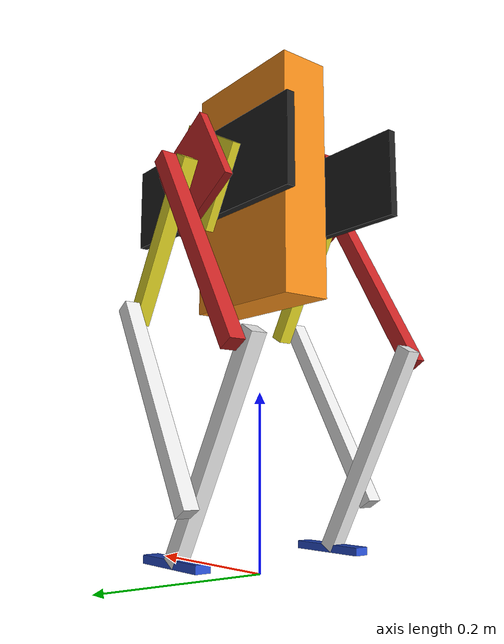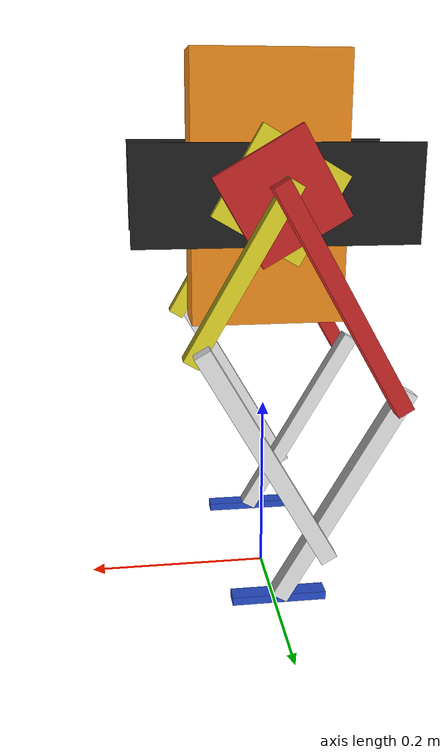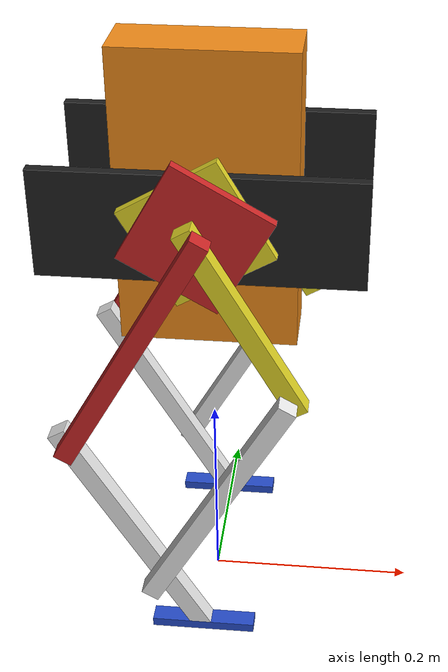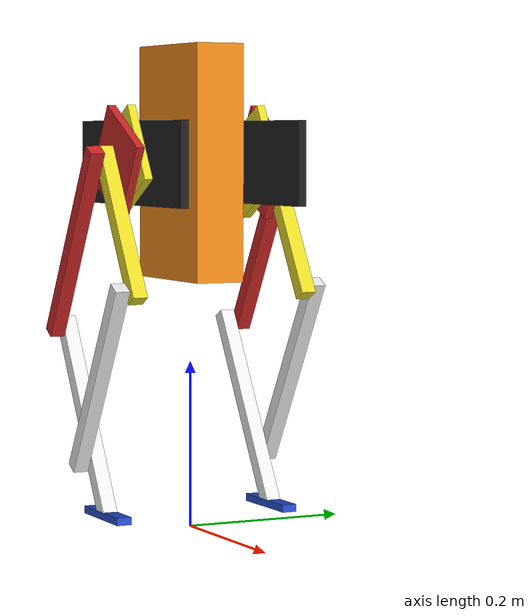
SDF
<sdf version='1.6'>
  <model name='biped'>
    <link name='x-prism'>
      <pose frame=''>0 0 0.44 0 -0 0</pose>
      <inertial>
        <pose frame=''>0 0 0 0 -0 0</pose>
        <mass>1</mass>
        <inertia>
          <ixx>0.000166667</ixx>
          <ixy>0</ixy>
          <ixz>0</ixz>
          <iyy>0.000166667</iyy>
          <iyz>0</iyz>
          <izz>0.000166667</izz>
        </inertia>
      </inertial>
      <visual name='x-prism_visual'>
        <pose frame=''>0 0 0 0 -0 0</pose>
        <geometry>
          <box>
            <size>0.001 0.001 0.001</size>
          </box>
        </geometry>
      </visual>
    </link>
    <joint name='planx' type='prismatic'>
      <child>x-prism</child>
      <parent>world</parent>
      <axis>
        <xyz>1 0 0</xyz>
        <limit>
          <lower>-500</lower>
          <upper>500</upper>
          <effort>1000</effort>
          <velocity>100</velocity>
        </limit>
        <dynamics>
          <spring_reference>0</spring_reference>
          <spring_stiffness>0</spring_stiffness>
        </dynamics>
        <use_parent_model_frame>1</use_parent_model_frame>
      </axis>
    </joint>
    <link name='hip'>
      <pose frame=''>0 0 0.44 0 -0 0</pose>
      <inertial>
        <pose frame=''>0 0 0 0 -0 0</pose>
        <mass>4.321</mass>
        <inertia>
          <ixx>0.01911</ixx>
          <ixy>4.177e-05</ixy>
          <ixz>-0.003356</ixz>
          <iyy>0.0245</iyy>
          <iyz>-0.0002039</iyz>
          <izz>0.007141</izz>
        </inertia>
      </inertial>
      <collision name='hip_collision'>
        <pose frame=''>0 0 0 0 -0 0</pose>
        <geometry>
          <box>
            <size>0.165 0.06 0.28</size>
          </box>
        </geometry>
        <surface>
          <contact>
            <ode/>
          </contact>
          <friction>
            <ode/>
          </friction>
        </surface>
      </collision>
      <visual name='hip_visual'>
        <pose frame=''>0 0 0 0 -0 0</pose>
        <geometry>
          <box>
            <size>0.165 0.06 0.28</size>
          </box>
        </geometry>
        <material>
          <script>
            <name>Gazebo/Orange</name>
            <uri>file://media/materials/scripts/gazebo.material</uri>
          </script>
        </material>
      </visual>
      <gravity>1</gravity>
      <velocity_decay/>
    </link>
    <joint name='planz' type='prismatic'>
      <child>hip</child>
      <parent>x-prism</parent>
      <axis>
        <xyz>0 0 1</xyz>
        <limit>
          <lower>-500</lower>
          <upper>500</upper>
          <effort>1000</effort>
          <velocity>100</velocity>
        </limit>
        <dynamics>
          <spring_reference>0</spring_reference>
          <spring_stiffness>0</spring_stiffness>
        </dynamics>
        <use_parent_model_frame>1</use_parent_model_frame>
      </axis>
    </joint>
    <link name='leg_left_abad'>
      <pose frame=''>0 0 0.44 0 -0 0</pose>
      <inertial>
        <pose frame=''>0 0.075 0 0 -0 0</pose>
        <mass>1.9082</mass>
        <inertia>
          <ixx>0.00160607</ixx>
          <ixy>0</ixy>
          <ixz>0</ixz>
          <iyy>0.0149635</iyy>
          <iyz>0</iyz>
          <izz>0.0133892</izz>
        </inertia>
      </inertial>
      <collision name='leg_left_abad_collision'>
        <pose frame=''>0 0.075 0 0 -0 0</pose>
        <geometry>
          <box>
            <size>0.29 0.01 0.1</size>
          </box>
        </geometry>
        <surface>
          <contact>
            <ode/>
          </contact>
          <friction>
            <ode>
              <mu>0.2</mu>
              <mu2>0.2</mu2>
            </ode>
          </friction>
        </surface>
      </collision>
      <visual name='leg_left_abad_visual'>
        <pose frame=''>0 0.075 0 0 -0 0</pose>
        <geometry>
          <box>
            <size>0.29 0.01 0.1</size>
          </box>
        </geometry>
        <material>
          <script>
            <name>Gazebo/Black</name>
            <uri>file://media/materials/scripts/gazebo.material</uri>
          </script>
        </material>
      </visual>
      <gravity>1</gravity>
      <velocity_decay/>
      <self_collide>1</self_collide>
    </link>
    <joint name='left_abad_joint' type='revolute'>
      <child>leg_left_abad</child>
      <parent>hip</parent>
      <axis>
        <xyz>1 0 0</xyz>
        <limit>
          <lower>-0.5236</lower>
          <upper>0.5236</upper>
          <effort>50</effort>
          <velocity>10000</velocity>
        </limit>
        <dynamics>
          <damping>0.003</damping>
          <friction>0.001</friction>
          <spring_reference>0</spring_reference>
          <spring_stiffness>0</spring_stiffness>
        </dynamics>
        <use_parent_model_frame>1</use_parent_model_frame>
      </axis>
    </joint>
    <link name='leg_left_spring_rear'>
      <pose frame=''>0 0.09 0.44 0 0.523599 0</pose>
      <inertial>
        <pose frame=''>0 0.005 0 0 -0 0</pose>
        <mass>0.303</mass>
        <inertia>
          <ixx>0.000255025</ixx>
          <ixy>0</ixy>
          <ixz>0</ixz>
          <iyy>0.000505</iyy>
          <iyz>0</iyz>
          <izz>0.000255025</izz>
        </inertia>
      </inertial>
      <collision name='leg_left_spring_rear_collision'>
        <pose frame=''>0 0.005 0 0 -0 0</pose>
        <geometry>
          <box>
            <size>0.1 0.01 0.1</size>
          </box>
        </geometry>
        <surface>
          <contact>
            <ode/>
          </contact>
          <friction>
            <ode>
              <mu>0.2</mu>
              <mu2>0.2</mu2>
            </ode>
          </friction>
        </surface>
      </collision>
      <visual name='leg_left_spring_rear_visual'>
        <pose frame=''>0 0.005 0 0 -0 0</pose>
        <geometry>
          <box>
            <size>0.1 0.01 0.1</size>
          </box>
        </geometry>
        <material>
          <script>
            <name>Gazebo/Red</name>
            <uri>file://media/materials/scripts/gazebo.material</uri>
          </script>
        </material>
      </visual>
      <gravity>1</gravity>
      <velocity_decay/>
      <self_collide>1</self_collide>
    </link>
    <joint name='left_spring_rear_joint' type='revolute'>
      <child>leg_left_spring_rear</child>
      <parent>leg_left_abad</parent>
      <axis>
        <xyz>0 1 0</xyz>
        <limit>
          <lower>-3.14</lower>
          <upper>3.14</upper>
          <effort>35</effort>
          <velocity>6.3</velocity>
        </limit>
        <dynamics>
          <damping>0.003</damping>
          <friction>0.001</friction>
          <spring_reference>0</spring_reference>
          <spring_stiffness>0</spring_stiffness>
        </dynamics>
        <use_parent_model_frame>1</use_parent_model_frame>
      </axis>
    </joint>
    <link name='leg_left_rear_top'>
      <pose frame=''>0 0.118 0.44 3.14159 -0.523606 -3.14159</pose>
      <inertial>
        <pose frame=''>0 0.009 0.112 0 -0 0</pose>
        <mass>0.145</mass>
        <inertia>
          <ixx>0.000820748</ixx>
          <ixy>0</ixy>
          <ixz>0</ixz>
          <iyy>0.000820748</iyy>
          <iyz>0</iyz>
          <izz>7.83e-06</izz>
        </inertia>
      </inertial>
      <collision name='leg_left_rear_top_collision'>
        <pose frame=''>0 0.009 0.112 0 -0 0</pose>
        <geometry>
          <box>
            <size>0.018 0.018 0.26</size>
          </box>
        </geometry>
        <surface>
          <contact>
            <ode/>
          </contact>
          <friction>
            <ode>
              <mu>0.2</mu>
              <mu2>0.2</mu2>
            </ode>
          </friction>
        </surface>
      </collision>
      <visual name='leg_left_rear_top_visual'>
        <pose frame=''>0 0.009 0.112 0 -0 0</pose>
        <geometry>
          <box>
            <size>0.018 0.018 0.26</size>
          </box>
        </geometry>
        <material>
          <script>
            <name>Gazebo/Red</name>
            <uri>file://media/materials/scripts/gazebo.material</uri>
          </script>
        </material>
      </visual>
      <gravity>1</gravity>
      <velocity_decay/>
      <self_collide>1</self_collide>
    </link>
    <joint name='left_rear_joint' type='revolute'>
      <child>leg_left_rear_top</child>
      <parent>leg_left_spring_rear</parent>
      <axis>
        <xyz>0 1 0</xyz>
        <limit>
          <lower>-1.57</lower>
          <upper>1.57</upper>
          <effort>50</effort>
          <velocity>10000</velocity>
        </limit>
        <dynamics>
          <damping>0.003</damping>
          <friction>0.001</friction>
          <spring_reference>0</spring_reference>
          <spring_stiffness>0</spring_stiffness>
        </dynamics>
        <use_parent_model_frame>1</use_parent_model_frame>
      </axis>
    </joint>
    <link name='leg_left_rear_bot'>
      <pose frame=''>-0.121002 0.118 0.230423 3.14159 0.523591 3.14159</pose>
      <inertial>
        <pose frame=''>0 -0.009 0.112 0 -0 0</pose>
        <mass>0.091</mass>
        <inertia>
          <ixx>0.00051509</ixx>
          <ixy>0</ixy>
          <ixz>0</ixz>
          <iyy>0.00051509</iyy>
          <iyz>0</iyz>
          <izz>4.914e-06</izz>
        </inertia>
      </inertial>
      <visual name='leg_left_rear_bot_visual'>
        <pose frame=''>0 -0.009 0.112 0 -0 0</pose>
        <geometry>
          <box>
            <size>0.018 0.018 0.26</size>
          </box>
        </geometry>
        <material>
          <script>
            <name>Gazebo/White</name>
            <uri>file://media/materials/scripts/gazebo.material</uri>
          </script>
        </material>
      </visual>
      <gravity>1</gravity>
      <velocity_decay/>
      <self_collide>1</self_collide>
    </link>
    <joint name='left_rear_joint2' type='revolute'>
      <child>leg_left_rear_bot</child>
      <parent>leg_left_rear_top</parent>
      <axis>
        <xyz>0 1 0</xyz>
        <limit>
          <lower>-3</lower>
          <upper>3</upper>
          <effort>50</effort>
          <velocity>10000</velocity>
        </limit>
        <dynamics>
          <damping>0.003</damping>
          <friction>0.001</friction>
          <spring_reference>0</spring_reference>
          <spring_stiffness>0</spring_stiffness>
        </dynamics>
        <use_parent_model_frame>1</use_parent_model_frame>
      </axis>
    </joint>
    <link name='leg_left_front_bot'>
      <pose frame=''>-0.039003 0.118 0.088394 0 0.523606 0</pose>
      <inertial>
        <pose frame=''>0 0.009 0.112 0 -0 0</pose>
        <mass>0.091</mass>
        <inertia>
          <ixx>0.00051509</ixx>
          <ixy>0</ixy>
          <ixz>0</ixz>
          <iyy>0.00051509</iyy>
          <iyz>0</iyz>
          <izz>4.914e-06</izz>
        </inertia>
      </inertial>
      <visual name='leg_left_front_bot_visual'>
        <pose frame=''>0 0.009 0.112 0 -0 0</pose>
        <geometry>
          <box>
            <size>0.018 0.018 0.26</size>
          </box>
        </geometry>
        <material>
          <script>
            <name>Gazebo/White</name>
            <uri>file://media/materials/scripts/gazebo.material</uri>
          </script>
        </material>
      </visual>
      <gravity>1</gravity>
      <velocity_decay/>
      <self_collide>1</self_collide>
    </link>
    <joint name='left_close_joint' type='revolute'>
      <child>leg_left_front_bot</child>
      <parent>leg_left_rear_bot</parent>
      <axis>
        <xyz>0 1 0</xyz>
        <limit>
          <lower>-1e+16</lower>
          <upper>1e+16</upper>
        </limit>
        <dynamics>
          <damping>0.003</damping>
          <friction>0.001</friction>
          <spring_reference>0</spring_reference>
          <spring_stiffness>0</spring_stiffness>
        </dynamics>
        <use_parent_model_frame>1</use_parent_model_frame>
      </axis>
    </joint>
    <link name='leg_left_front_top'>
      <pose frame=''>0.081999 0.1 0.297971 0 -0.523591 0</pose>
      <inertial>
        <pose frame=''>0 0.009 0.082 0 -0 0</pose>
        <mass>0.145</mass>
        <inertia>
          <ixx>0.000487248</ixx>
          <ixy>0</ixy>
          <ixz>0</ixz>
          <iyy>0.000632248</iyy>
          <iyz>0</iyz>
          <izz>7.83e-06</izz>
        </inertia>
      </inertial>
      <collision name='leg_left_front_top_collision'>
        <pose frame=''>0 0.009 0.082 0 -0 0</pose>
        <geometry>
          <box>
            <size>0.018 0.018 0.2</size>
          </box>
        </geometry>
        <surface>
          <contact>
            <ode/>
          </contact>
          <friction>
            <ode>
              <mu>0.2</mu>
              <mu2>0.2</mu2>
            </ode>
          </friction>
        </surface>
      </collision>
      <visual name='leg_left_front_top_visual'>
        <pose frame=''>0 0.009 0.082 0 -0 0</pose>
        <geometry>
          <box>
            <size>0.018 0.018 0.2</size>
          </box>
        </geometry>
        <material>
          <script>
            <name>Gazebo/Yellow</name>
            <uri>file://media/materials/scripts/gazebo.material</uri>
          </script>
        </material>
      </visual>
      <gravity>1</gravity>
      <velocity_decay/>
      <self_collide>1</self_collide>
    </link>
    <joint name='left_front_joint2' type='revolute'>
      <child>leg_left_front_top</child>
      <parent>leg_left_front_bot</parent>
      <axis>
        <xyz>0 1 0</xyz>
        <limit>
          <lower>-3</lower>
          <upper>3</upper>
          <effort>50</effort>
          <velocity>10000</velocity>
        </limit>
        <dynamics>
          <damping>0.003</damping>
          <friction>0.001</friction>
          <spring_reference>0</spring_reference>
          <spring_stiffness>0</spring_stiffness>
        </dynamics>
        <use_parent_model_frame>1</use_parent_model_frame>
      </axis>
    </joint>
    <link name='leg_left_spring_front'>
      <pose frame=''>-0 0.08 0.44 3.14159 0.523584 3.14159</pose>
      <inertial>
        <pose frame=''>0 0.005 0 0 -0 0</pose>
        <mass>0.303</mass>
        <inertia>
          <ixx>0.000255025</ixx>
          <ixy>0</ixy>
          <ixz>0</ixz>
          <iyy>0.000505</iyy>
          <iyz>0</iyz>
          <izz>0.000255025</izz>
        </inertia>
      </inertial>
      <collision name='leg_left_spring_front_collision'>
        <pose frame=''>0 0.005 0 0 -0 0</pose>
        <geometry>
          <box>
            <size>0.1 0.01 0.1</size>
          </box>
        </geometry>
        <surface>
          <contact>
            <ode/>
          </contact>
          <friction>
            <ode>
              <mu>0.2</mu>
              <mu2>0.2</mu2>
            </ode>
          </friction>
        </surface>
      </collision>
      <visual name='leg_left_spring_front_visual'>
        <pose frame=''>0 0.005 0 0 -0 0</pose>
        <geometry>
          <box>
            <size>0.1 0.01 0.1</size>
          </box>
        </geometry>
        <material>
          <script>
            <name>Gazebo/Yellow</name>
            <uri>file://media/materials/scripts/gazebo.material</uri>
          </script>
        </material>
      </visual>
      <gravity>1</gravity>
      <velocity_decay/>
      <self_collide>1</self_collide>
    </link>
    <joint name='left_front_joint' type='revolute'>
      <child>leg_left_spring_front</child>
      <parent>leg_left_front_top</parent>
      <axis>
        <xyz>0 1 0</xyz>
        <limit>
          <lower>-1.57</lower>
          <upper>1.57</upper>
          <effort>50</effort>
          <velocity>10000</velocity>
        </limit>
        <dynamics>
          <damping>0.003</damping>
          <friction>0.001</friction>
          <spring_reference>0</spring_reference>
          <spring_stiffness>0</spring_stiffness>
        </dynamics>
        <use_parent_model_frame>1</use_parent_model_frame>
      </axis>
    </joint>
    <link name='left_end_tip'>
      <pose frame=''>-3e-06 0.109 0.020844 3.14159 -7e-06 3.14159</pose>
      <inertial>
        <pose frame=''>0 0 0 3.14159 1.57079 3.14159</pose>
        <mass>0.0466</mass>
        <inertia>
          <ixx>4.00915e-05</ixx>
          <ixy>0</ixy>
          <ixz>0</ixz>
          <iyy>3.91479e-05</iyy>
          <iyz>0</iyz>
          <izz>1.57275e-06</izz>
        </inertia>
      </inertial>
      <collision name='left_end_tip_collision'>
        <pose frame=''>0 0 0 3.14159 1.57079 3.14159</pose>
        <geometry>
          <box>
            <size>0.009 0.018 0.1</size>
          </box>
        </geometry>
        <surface>
          <contact>
            <ode/>
          </contact>
          <friction>
            <ode>
              <mu>inf</mu>
              <mu2>inf</mu2>
            </ode>
          </friction>
        </surface>
      </collision>
      <visual name='left_end_tip_visual'>
        <pose frame=''>0 0 0 3.14159 1.57079 3.14159</pose>
        <geometry>
          <box>
            <size>0.009 0.018 0.1</size>
          </box>
        </geometry>
        <material>
          <script>
            <name>Gazebo/Blue</name>
            <uri>file://media/materials/scripts/gazebo.material</uri>
          </script>
        </material>
      </visual>
      <gravity>1</gravity>
      <velocity_decay/>
      <self_collide>1</self_collide>
    </link>
    <joint name='left_end_joint' type='revolute'>
      <child>left_end_tip</child>
      <parent>leg_left_rear_bot</parent>
      <axis>
        <xyz>0 1 0</xyz>
        <limit>
          <lower>-1e+16</lower>
          <upper>1e+16</upper>
        </limit>
        <dynamics>
          <damping>0.0001</damping>
          <friction>0</friction>
          <spring_reference>0</spring_reference>
          <spring_stiffness>0</spring_stiffness>
        </dynamics>
        <use_parent_model_frame>1</use_parent_model_frame>
      </axis>
    </joint>
    <link name='leg_right_abad'>
      <pose frame=''>0 0 0.44 0 -0 0</pose>
      <inertial>
        <pose frame=''>0 -0.075 0 0 -0 0</pose>
        <mass>1.9082</mass>
        <inertia>
          <ixx>0.00160607</ixx>
          <ixy>0</ixy>
          <ixz>0</ixz>
          <iyy>0.0149635</iyy>
          <iyz>0</iyz>
          <izz>0.0133892</izz>
        </inertia>
      </inertial>
      <collision name='leg_right_abad_collision'>
        <pose frame=''>0 -0.075 0 0 -0 0</pose>
        <geometry>
          <box>
            <size>0.29 0.01 0.1</size>
          </box>
        </geometry>
        <surface>
          <contact>
            <ode/>
          </contact>
          <friction>
            <ode>
              <mu>0.2</mu>
              <mu2>0.2</mu2>
            </ode>
          </friction>
        </surface>
      </collision>
      <visual name='leg_right_abad_visual'>
        <pose frame=''>0 -0.075 0 0 -0 0</pose>
        <geometry>
          <box>
            <size>0.29 0.01 0.1</size>
          </box>
        </geometry>
        <material>
          <script>
            <name>Gazebo/Black</name>
            <uri>file://media/materials/scripts/gazebo.material</uri>
          </script>
        </material>
      </visual>
      <gravity>1</gravity>
      <velocity_decay/>
      <self_collide>1</self_collide>
    </link>
    <joint name='right_abad_joint' type='revolute'>
      <child>leg_right_abad</child>
      <parent>hip</parent>
      <axis>
        <xyz>1 0 0</xyz>
        <limit>
          <lower>-0.5236</lower>
          <upper>0.5236</upper>
          <effort>50</effort>
          <velocity>10000</velocity>
        </limit>
        <dynamics>
          <damping>0.003</damping>
          <friction>0.001</friction>
          <spring_reference>0</spring_reference>
          <spring_stiffness>0</spring_stiffness>
        </dynamics>
        <use_parent_model_frame>1</use_parent_model_frame>
      </axis>
    </joint>
    <link name='leg_right_spring_rear'>
      <pose frame=''>0 -0.09 0.44 0 0.523599 0</pose>
      <inertial>
        <pose frame=''>0 -0.005 0 0 -0 0</pose>
        <mass>0.303</mass>
        <inertia>
          <ixx>0.000255025</ixx>
          <ixy>0</ixy>
          <ixz>0</ixz>
          <iyy>0.000505</iyy>
          <iyz>0</iyz>
          <izz>0.000255025</izz>
        </inertia>
      </inertial>
      <collision name='leg_right_spring_rear_collision'>
        <pose frame=''>0 -0.005 0 0 -0 0</pose>
        <geometry>
          <box>
            <size>0.1 0.01 0.1</size>
          </box>
        </geometry>
        <surface>
          <contact>
            <ode/>
          </contact>
          <friction>
            <ode>
              <mu>0.2</mu>
              <mu2>0.2</mu2>
            </ode>
          </friction>
        </surface>
      </collision>
      <visual name='leg_right_spring_rear_visual'>
        <pose frame=''>0 -0.005 0 0 -0 0</pose>
        <geometry>
          <box>
            <size>0.1 0.01 0.1</size>
          </box>
        </geometry>
        <material>
          <script>
            <name>Gazebo/Red</name>
            <uri>file://media/materials/scripts/gazebo.material</uri>
          </script>
        </material>
      </visual>
      <gravity>1</gravity>
      <velocity_decay/>
      <self_collide>1</self_collide>
    </link>
    <joint name='right_spring_rear_joint' type='revolute'>
      <child>leg_right_spring_rear</child>
      <parent>leg_right_abad</parent>
      <axis>
        <xyz>0 1 0</xyz>
        <limit>
          <lower>-3.14</lower>
          <upper>3.14</upper>
          <effort>35</effort>
          <velocity>6.3</velocity>
        </limit>
        <dynamics>
          <damping>0.003</damping>
          <friction>0.001</friction>
          <spring_reference>0</spring_reference>
          <spring_stiffness>0</spring_stiffness>
        </dynamics>
        <use_parent_model_frame>1</use_parent_model_frame>
      </axis>
    </joint>
    <link name='leg_right_rear_top'>
      <pose frame=''>0 -0.118 0.44 3.14159 -0.523606 -3.14159</pose>
      <inertial>
        <pose frame=''>0 -0.009 0.112 0 -0 0</pose>
        <mass>0.145</mass>
        <inertia>
          <ixx>0.000820748</ixx>
          <ixy>0</ixy>
          <ixz>0</ixz>
          <iyy>0.000820748</iyy>
          <iyz>0</iyz>
          <izz>7.83e-06</izz>
        </inertia>
      </inertial>
      <collision name='leg_right_rear_top_collision'>
        <pose frame=''>0 -0.009 0.112 0 -0 0</pose>
        <geometry>
          <box>
            <size>0.018 0.018 0.26</size>
          </box>
        </geometry>
        <surface>
          <contact>
            <ode/>
          </contact>
          <friction>
            <ode>
              <mu>0.2</mu>
              <mu2>0.2</mu2>
            </ode>
          </friction>
        </surface>
      </collision>
      <visual name='leg_right_rear_top_visual'>
        <pose frame=''>0 -0.009 0.112 0 -0 0</pose>
        <geometry>
          <box>
            <size>0.018 0.018 0.26</size>
          </box>
        </geometry>
        <material>
          <script>
            <name>Gazebo/Red</name>
            <uri>file://media/materials/scripts/gazebo.material</uri>
          </script>
        </material>
      </visual>
      <gravity>1</gravity>
      <velocity_decay/>
      <self_collide>1</self_collide>
    </link>
    <joint name='right_rear_joint' type='revolute'>
      <child>leg_right_rear_top</child>
      <parent>leg_right_spring_rear</parent>
      <axis>
        <xyz>0 1 0</xyz>
        <limit>
          <lower>-1.57</lower>
          <upper>1.57</upper>
          <effort>50</effort>
          <velocity>10000</velocity>
        </limit>
        <dynamics>
          <damping>0.003</damping>
          <friction>0.001</friction>
          <spring_reference>0</spring_reference>
          <spring_stiffness>0</spring_stiffness>
        </dynamics>
        <use_parent_model_frame>1</use_parent_model_frame>
      </axis>
    </joint>
    <link name='leg_right_rear_bot'>
      <pose frame=''>-0.121002 -0.118 0.230423 3.14159 0.523591 3.14159</pose>
      <inertial>
        <pose frame=''>0 0.009 0.112 0 -0 0</pose>
        <mass>0.091</mass>
        <inertia>
          <ixx>0.00051509</ixx>
          <ixy>0</ixy>
          <ixz>0</ixz>
          <iyy>0.00051509</iyy>
          <iyz>0</iyz>
          <izz>4.914e-06</izz>
        </inertia>
      </inertial>
      <visual name='leg_right_rear_bot_visual'>
        <pose frame=''>0 0.009 0.112 0 -0 0</pose>
        <geometry>
          <box>
            <size>0.018 0.018 0.26</size>
          </box>
        </geometry>
        <material>
          <script>
            <name>Gazebo/White</name>
            <uri>file://media/materials/scripts/gazebo.material</uri>
          </script>
        </material>
      </visual>
      <gravity>1</gravity>
      <velocity_decay/>
      <self_collide>1</self_collide>
    </link>
    <joint name='right_rear_joint2' type='revolute'>
      <child>leg_right_rear_bot</child>
      <parent>leg_right_rear_top</parent>
      <axis>
        <xyz>0 1 0</xyz>
        <limit>
          <lower>-3</lower>
          <upper>3</upper>
          <effort>50</effort>
          <velocity>10000</velocity>
        </limit>
        <dynamics>
          <damping>0.003</damping>
          <friction>0.001</friction>
          <spring_reference>0</spring_reference>
          <spring_stiffness>0</spring_stiffness>
        </dynamics>
        <use_parent_model_frame>1</use_parent_model_frame>
      </axis>
    </joint>
    <link name='leg_right_front_bot'>
      <pose frame=''>-0.039003 -0.118 0.088394 0 0.523606 0</pose>
      <inertial>
        <pose frame=''>0 -0.009 0.112 0 -0 0</pose>
        <mass>0.091</mass>
        <inertia>
          <ixx>0.00051509</ixx>
          <ixy>0</ixy>
          <ixz>0</ixz>
          <iyy>0.00051509</iyy>
          <iyz>0</iyz>
          <izz>4.914e-06</izz>
        </inertia>
      </inertial>
      <visual name='leg_right_front_bot_visual'>
        <pose frame=''>0 -0.009 0.112 0 -0 0</pose>
        <geometry>
          <box>
            <size>0.018 0.018 0.26</size>
          </box>
        </geometry>
        <material>
          <script>
            <name>Gazebo/White</name>
            <uri>file://media/materials/scripts/gazebo.material</uri>
          </script>
        </material>
      </visual>
      <gravity>1</gravity>
      <velocity_decay/>
      <self_collide>1</self_collide>
    </link>
    <joint name='right_close_joint' type='revolute'>
      <child>leg_right_front_bot</child>
      <parent>leg_right_rear_bot</parent>
      <axis>
        <xyz>0 1 0</xyz>
        <limit>
          <lower>-1e+16</lower>
          <upper>1e+16</upper>
        </limit>
        <dynamics>
          <damping>0.003</damping>
          <friction>0.001</friction>
          <spring_reference>0</spring_reference>
          <spring_stiffness>0</spring_stiffness>
        </dynamics>
        <use_parent_model_frame>1</use_parent_model_frame>
      </axis>
    </joint>
    <link name='leg_right_front_top'>
      <pose frame=''>0.081999 -0.1 0.297971 0 -0.523591 0</pose>
      <inertial>
        <pose frame=''>0 -0.009 0.082 0 -0 0</pose>
        <mass>0.145</mass>
        <inertia>
          <ixx>0.000487248</ixx>
          <ixy>0</ixy>
          <ixz>0</ixz>
          <iyy>0.000632248</iyy>
          <iyz>0</iyz>
          <izz>7.83e-06</izz>
        </inertia>
      </inertial>
      <collision name='leg_right_front_top_collision'>
        <pose frame=''>0 -0.009 0.082 0 -0 0</pose>
        <geometry>
          <box>
            <size>0.018 0.018 0.2</size>
          </box>
        </geometry>
        <surface>
          <contact>
            <ode/>
          </contact>
          <friction>
            <ode>
              <mu>0.2</mu>
              <mu2>0.2</mu2>
            </ode>
          </friction>
        </surface>
      </collision>
      <visual name='leg_right_front_top_visual'>
        <pose frame=''>0 -0.009 0.082 0 -0 0</pose>
        <geometry>
          <box>
            <size>0.018 0.018 0.2</size>
          </box>
        </geometry>
        <material>
          <script>
            <name>Gazebo/Yellow</name>
            <uri>file://media/materials/scripts/gazebo.material</uri>
          </script>
        </material>
      </visual>
      <gravity>1</gravity>
      <velocity_decay/>
      <self_collide>1</self_collide>
    </link>
    <joint name='right_front_joint2' type='revolute'>
      <child>leg_right_front_top</child>
      <parent>leg_right_front_bot</parent>
      <axis>
        <xyz>0 1 0</xyz>
        <limit>
          <lower>-3</lower>
          <upper>3</upper>
          <effort>50</effort>
          <velocity>10000</velocity>
        </limit>
        <dynamics>
          <damping>0.003</damping>
          <friction>0.001</friction>
          <spring_reference>0</spring_reference>
          <spring_stiffness>0</spring_stiffness>
        </dynamics>
        <use_parent_model_frame>1</use_parent_model_frame>
      </axis>
    </joint>
    <link name='leg_right_spring_front'>
      <pose frame=''>-0 -0.08 0.44 3.14159 0.523584 3.14159</pose>
      <inertial>
        <pose frame=''>0 -0.005 0 0 -0 0</pose>
        <mass>0.303</mass>
        <inertia>
          <ixx>0.000255025</ixx>
          <ixy>0</ixy>
          <ixz>0</ixz>
          <iyy>0.000505</iyy>
          <iyz>0</iyz>
          <izz>0.000255025</izz>
        </inertia>
      </inertial>
      <collision name='leg_right_spring_front_collision'>
        <pose frame=''>0 -0.005 0 0 -0 0</pose>
        <geometry>
          <box>
            <size>0.1 0.01 0.1</size>
          </box>
        </geometry>
        <surface>
          <contact>
            <ode/>
          </contact>
          <friction>
            <ode>
              <mu>0.2</mu>
              <mu2>0.2</mu2>
            </ode>
          </friction>
        </surface>
      </collision>
      <visual name='leg_right_spring_front_visual'>
        <pose frame=''>0 -0.005 0 0 -0 0</pose>
        <geometry>
          <box>
            <size>0.1 0.01 0.1</size>
          </box>
        </geometry>
        <material>
          <script>
            <name>Gazebo/Yellow</name>
            <uri>file://media/materials/scripts/gazebo.material</uri>
          </script>
        </material>
      </visual>
      <gravity>1</gravity>
      <velocity_decay/>
      <self_collide>1</self_collide>
    </link>
    <joint name='right_front_joint' type='revolute'>
      <child>leg_right_spring_front</child>
      <parent>leg_right_front_top</parent>
      <axis>
        <xyz>0 1 0</xyz>
        <limit>
          <lower>-1.57</lower>
          <upper>1.57</upper>
          <effort>50</effort>
          <velocity>10000</velocity>
        </limit>
        <dynamics>
          <damping>0.003</damping>
          <friction>0.001</friction>
          <spring_reference>0</spring_reference>
          <spring_stiffness>0</spring_stiffness>
        </dynamics>
        <use_parent_model_frame>1</use_parent_model_frame>
      </axis>
    </joint>
    <link name='right_end_tip'>
      <pose frame=''>-3e-06 -0.109 0.020844 3.14159 -7e-06 3.14159</pose>
      <inertial>
        <pose frame=''>0 0 0 3.14159 1.57079 3.14159</pose>
        <mass>0.0466</mass>
        <inertia>
          <ixx>4.00915e-05</ixx>
          <ixy>0</ixy>
          <ixz>0</ixz>
          <iyy>3.91479e-05</iyy>
          <iyz>0</iyz>
          <izz>1.57275e-06</izz>
        </inertia>
      </inertial>
      <collision name='right_end_tip_collision'>
        <pose frame=''>0 0 0 3.14159 1.57079 3.14159</pose>
        <geometry>
          <box>
            <size>0.009 0.018 0.1</size>
          </box>
        </geometry>
        <surface>
          <contact>
            <ode/>
          </contact>
          <friction>
            <ode>
              <mu>inf</mu>
              <mu2>inf</mu2>
            </ode>
          </friction>
        </surface>
      </collision>
      <visual name='right_end_tip_visual'>
        <pose frame=''>0 0 0 3.14159 1.57079 3.14159</pose>
        <geometry>
          <box>
            <size>0.009 0.018 0.1</size>
          </box>
        </geometry>
        <material>
          <script>
            <name>Gazebo/Blue</name>
            <uri>file://media/materials/scripts/gazebo.material</uri>
          </script>
        </material>
      </visual>
      <gravity>1</gravity>
      <velocity_decay/>
      <self_collide>1</self_collide>
    </link>
    <joint name='right_end_joint' type='revolute'>
      <child>right_end_tip</child>
      <parent>leg_right_rear_bot</parent>
      <axis>
        <xyz>0 1 0</xyz>
        <limit>
          <lower>-1e+16</lower>
          <upper>1e+16</upper>
        </limit>
        <dynamics>
          <damping>0.0001</damping>
          <friction>0</friction>
          <spring_reference>0</spring_reference>
          <spring_stiffness>0</spring_stiffness>
        </dynamics>
        <use_parent_model_frame>1</use_parent_model_frame>
      </axis>
    </joint>
    <joint name='right_spring_front_joint' type='revolute'>
      <child>leg_right_abad</child>
      <parent>leg_right_spring_front</parent>
      <axis>
        <xyz>0 1 0</xyz>
        <limit>
          <lower>-3.14</lower>
          <upper>3.14</upper>
          <effort>35</effort>
          <velocity>6.3</velocity>
        </limit>
        <dynamics>
          <damping>0.003</damping>
          <friction>0.001</friction>
          <spring_reference>0</spring_reference>
          <spring_stiffness>0</spring_stiffness>
        </dynamics>
        <use_parent_model_frame>1</use_parent_model_frame>
      </axis>
    </joint>
    <joint name='left_spring_front_joint' type='revolute'>
      <child>leg_left_abad</child>
      <parent>leg_left_spring_front</parent>
      <axis>
        <xyz>0 1 0</xyz>
        <limit>
          <lower>-3.14</lower>
          <upper>3.14</upper>
          <effort>35</effort>
          <velocity>6.3</velocity>
        </limit>
        <dynamics>
          <damping>0.003</damping>
          <friction>0.001</friction>
          <spring_reference>0</spring_reference>
          <spring_stiffness>0</spring_stiffness>
        </dynamics>
        <use_parent_model_frame>1</use_parent_model_frame>
      </axis>
    </joint>
    <plugin name='gazebo_ros_control' filename='libgazebo_ros_control.so'>
      <robotNamespace>/biped2</robotNamespace>
      <robotSimType>biped2_sim_hardware/BipedHWSim</robotSimType>
    </plugin>
    <plugin name='left_knee_joint_torsional_spring' filename='libgazebo_joint_torsional_spring.so'>
      <kx>140</kx>
      <set_point>0.0</set_point>
      <joint>left_front_joint</joint>
    </plugin>
    <plugin name='left_knee_joint_torsional_spring2' filename='libgazebo_joint_torsional_spring.so'>
      <kx>150</kx>
      <set_point>0.0</set_point>
      <joint>left_rear_joint</joint>
    </plugin>
    <plugin name='right_knee_joint_torsional_spring' filename='libgazebo_joint_torsional_spring.so'>
      <kx>140</kx>
      <set_point>0.0</set_point>
      <joint>right_front_joint</joint>
    </plugin>
    <plugin name='right_knee_joint_torsional_spring2' filename='libgazebo_joint_torsional_spring.so'>
      <kx>150</kx>
      <set_point>0.0</set_point>
      <joint>right_rear_joint</joint>
    </plugin>
    <plugin name='left_end_joint_torsional_spring' filename='libgazebo_joint_torsional_spring.so'>
      <kx>0.01</kx>
      <set_point>0.0</set_point>
      <joint>left_end_joint</joint>
    </plugin>
    <static>0</static>
    <plugin name='right_end_joint_torsional_spring' filename='libgazebo_joint_torsional_spring.so'>
      <kx>0.01</kx>
      <set_point>0.0</set_point>
      <joint>right_end_joint</joint>
    </plugin>
  </model>
</sdf>
